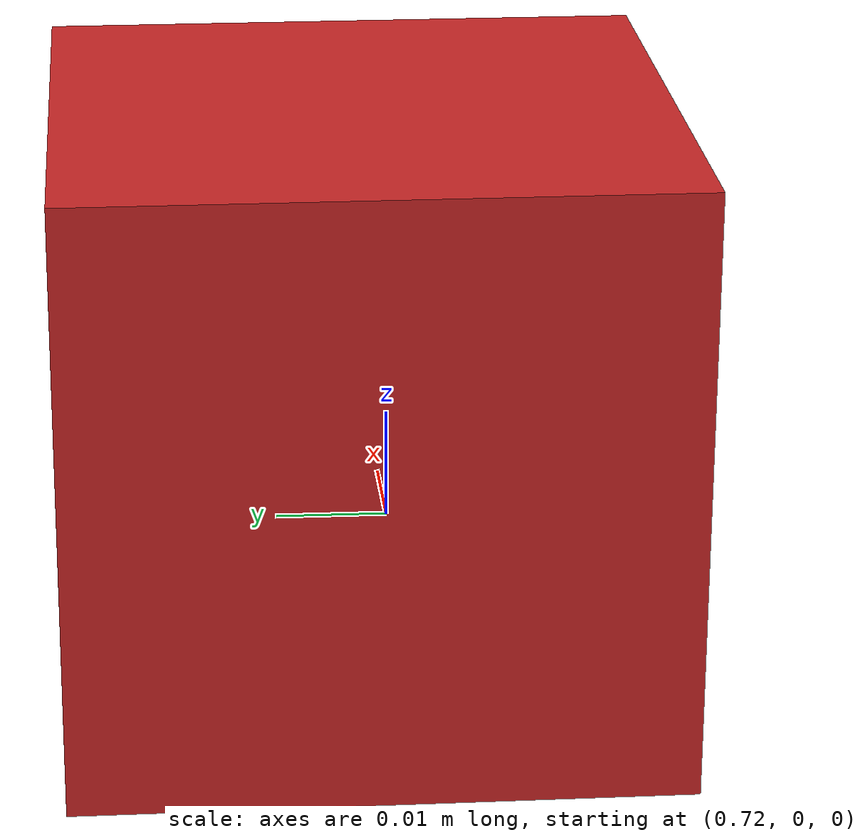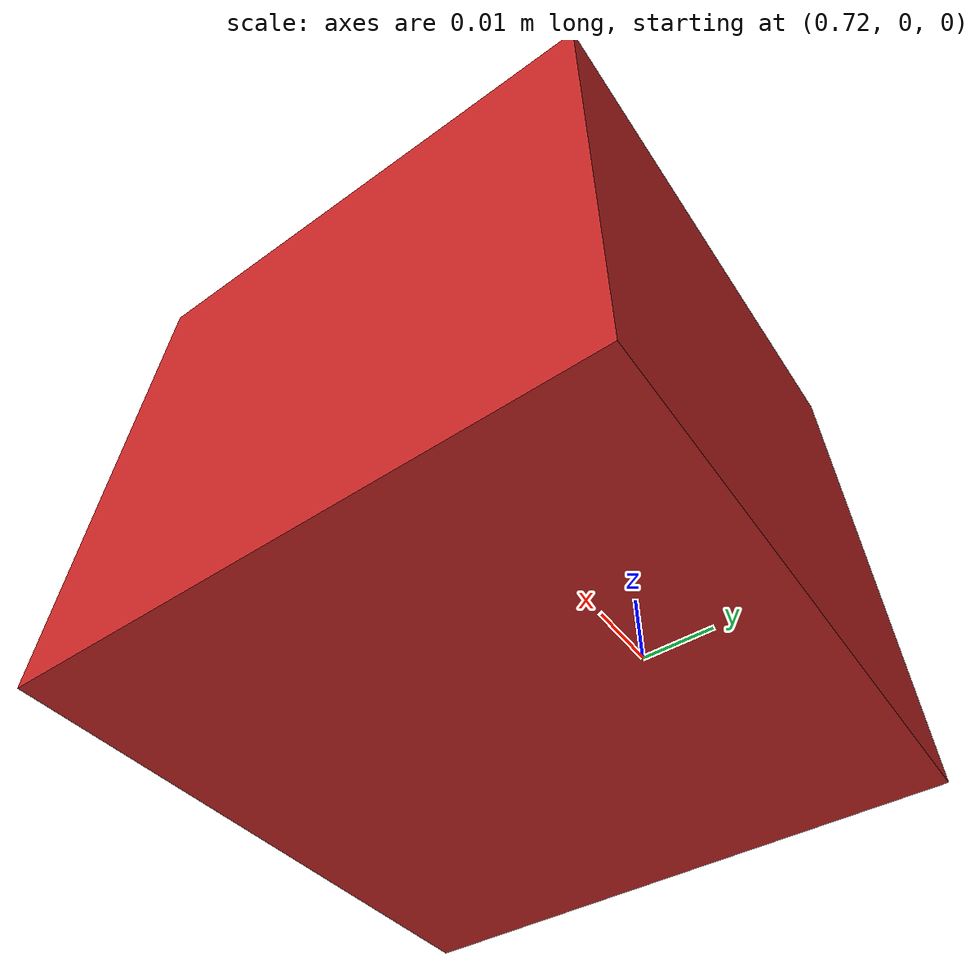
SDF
<?xml version="1.0"?>
<sdf version="1.5">
  <model name="object_box">
    <static>false</static>
    <link name="link">
      <inertial>
        <pose>0.75 0 0 0 0 0</pose>
        <mass>0.1</mass>
      </inertial>
      <collision name="collision">
        <pose>0.75 0 0 0 0 0</pose>
        <geometry>
          <box>
            <size>0.06 0.06 0.06</size>
          </box>
        </geometry>
        <surface>
          <friction>
            <ode>
              <mu>100</mu>
              <mu2>50</mu2>
            </ode>
          </friction>
        </surface>
      </collision>
      <visual name="visual">
        <pose>0.75 0 0 0 0 0</pose>
        <geometry>
          <box>
            <size>0.06 0.06 0.06</size>
          </box>
        </geometry>
        <material>
          <script>
            <uri>file://media/materials/scripts/gazebo.material</uri>
            <name>Gazebo/Red</name>
          </script>
        </material>
      </visual>
    </link>
  </model>
</sdf>
